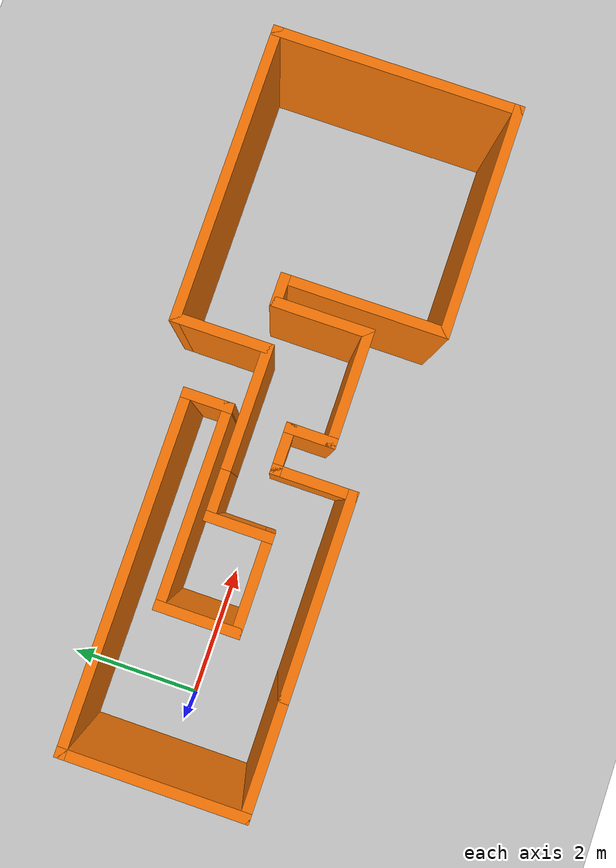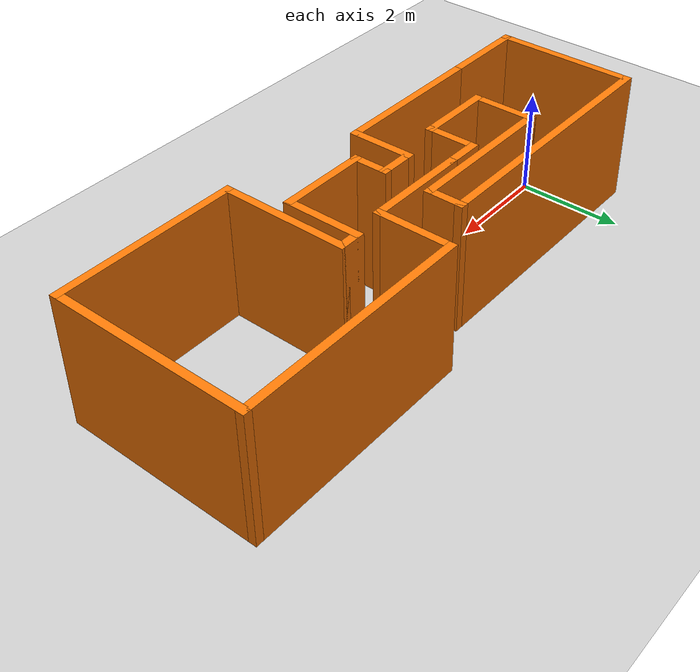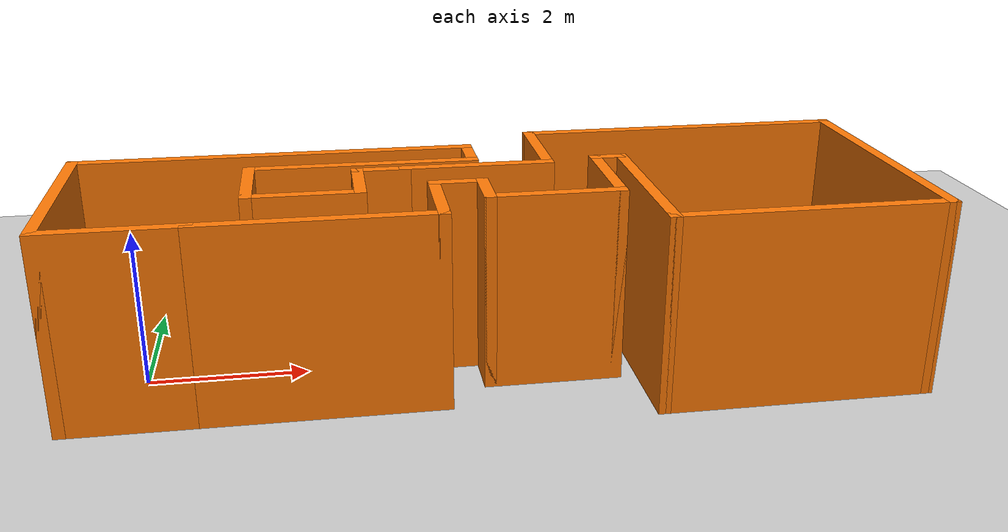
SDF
<sdf version="1.7">
 <world name="default">
  <light name="sun" type="directional">
   <pose>0 0 10 0 -0 0</pose>
   <diffuse>0.8 0.8 0.8 1</diffuse>
   <specular>0.2 0.2 0.2 1</specular>
   <attenuation>
    <range>1000</range>
    <constant>0.9</constant>
    <linear>0.01</linear>
    <quadratic>0.001</quadratic>
   </attenuation>
   <direction>-0.5 0.1 -0.9</direction>
   <spot><inner_angle>0</inner_angle><outer_angle>0</outer_angle><falloff>0</falloff></spot>
  </light>
  <model name="ground_plane">
   <static>1</static>
   <link name="link">
    <collision name="collision">
     <geometry><plane><normal>0 0 1</normal><size>100 100</size></plane></geometry>
     <surface>
      <contact><collide_bitmask>65535</collide_bitmask></contact>
      <friction><ode><mu>100</mu><mu2>50</mu2></ode></friction>
     </surface>
    </collision>
    <visual name="visual">
     <cast_shadows>0</cast_shadows>
     <geometry><plane><normal>0 0 1</normal><size>100 100</size></plane></geometry>
     <material>
      <script><uri>file://media/materials/scripts/gazebo.material</uri><name>Gazebo/Grey</name></script>
     </material>
    </visual>
   </link>
  </model>
  <gravity>0 0 -9.8</gravity>
  <magnetic_field>6e-06 2.3e-05 -4.2e-05</magnetic_field>
  <atmosphere type="adiabatic"/>
  <physics type="ode">
   <max_step_size>0.001</max_step_size>
   <real_time_factor>1</real_time_factor>
   <real_time_update_rate>1000</real_time_update_rate>
  </physics>
  <scene><ambient>0.4 0.4 0.4 1</ambient><background>0.7 0.7 0.7 1</background><shadows>1</shadows></scene>
  <spherical_coordinates>
   <surface_model>EARTH_WGS84</surface_model>
   <latitude_deg>0</latitude_deg>
   <longitude_deg>0</longitude_deg>
   <elevation>0</elevation>
   <heading_deg>0</heading_deg>
  </spherical_coordinates>
  <model name="myworld">
   <pose>4.34746 0.307578 0 0 -0 0</pose>
   <link name="Wall_0">
    <collision name="Wall_0_Collision">
     <geometry><box><size>3 0.15 2.5</size></box></geometry>
     <pose>0 0 1.25 0 -0 0</pose>
    </collision>
    <visual name="Wall_0_Visual">
     <pose>0 0 1.25 0 -0 0</pose>
     <geometry><box><size>3 0.15 2.5</size></box></geometry>
     <material>
      <script><uri>file://media/materials/scripts/gazebo.material</uri><name>Gazebo/Grey</name></script>
      <ambient>0.996078 0.47451 0.0196078 1</ambient>
     </material>
     <meta><layer>0</layer></meta>
    </visual>
    <pose>-2.125 -1.5075 0 0 -0 0</pose>
   </link>
   <link name="Wall_1">
    <collision name="Wall_1_Collision">
     <geometry><box><size>1.25 0.15 2.5</size></box></geometry>
     <pose>0 0 1.25 0 -0 0</pose>
    </collision>
    <visual name="Wall_1_Visual">
     <pose>0 0 1.25 0 -0 0</pose>
     <geometry><box><size>1.25 0.15 2.5</size></box></geometry>
     <material>
      <script><uri>file://media/materials/scripts/gazebo.material</uri><name>Gazebo/Grey</name></script>
      <ambient>0.996078 0.47451 0.0196078 1</ambient>
     </material>
     <meta><layer>0</layer></meta>
    </visual>
    <pose>-0.7 -0.9575 0 0 -0 1.5708</pose>
   </link>
   <link name="Wall_10">
    <collision name="Wall_10_Collision">
     <geometry><box><size>4.5 0.15 2.5</size></box></geometry>
     <pose>0 0 1.25 0 -0 0</pose>
    </collision>
    <visual name="Wall_10_Visual">
     <pose>0 0 1.25 0 -0 0</pose>
     <geometry><box><size>4.5 0.15 2.5</size></box></geometry>
     <material>
      <script><uri>file://media/materials/scripts/gazebo.material</uri><name>Gazebo/Grey</name></script>
      <ambient>0.996078 0.47451 0.0196078 1</ambient>
     </material>
     <meta><layer>0</layer></meta>
    </visual>
    <pose>3.025 1.5925 0 0 -0 3.14159</pose>
   </link>
   <link name="Wall_11">
    <collision name="Wall_11_Collision">
     <geometry><box><size>1.5 0.15 2.5</size></box></geometry>
     <pose>0 0 1.25 0 -0 0</pose>
    </collision>
    <visual name="Wall_11_Visual">
     <pose>0 0 1.25 0 -0 0</pose>
     <geometry><box><size>1.5 0.15 2.5</size></box></geometry>
     <material>
      <script><uri>file://media/materials/scripts/gazebo.material</uri><name>Gazebo/Grey</name></script>
      <ambient>0.996078 0.47451 0.0196078 1</ambient>
     </material>
     <meta><layer>0</layer></meta>
    </visual>
    <pose>0.85 0.9175 0 0 -0 -1.5708</pose>
   </link>
   <link name="Wall_12">
    <collision name="Wall_12_Collision">
     <geometry><box><size>2 0.15 2.5</size></box></geometry>
     <pose>0 0 1.25 0 -0 0</pose>
    </collision>
    <visual name="Wall_12_Visual">
     <pose>0 0 1.25 0 -0 0</pose>
     <geometry><box><size>2 0.15 2.5</size></box></geometry>
     <material>
      <script><uri>file://media/materials/scripts/gazebo.material</uri><name>Gazebo/Grey</name></script>
      <ambient>0.996078 0.47451 0.0196078 1</ambient>
     </material>
     <meta><layer>0</layer></meta>
    </visual>
    <pose>-0.075 0.2425 0 0 -0 3.14159</pose>
   </link>
   <link name="Wall_13">
    <collision name="Wall_13_Collision">
     <geometry><box><size>0.75 0.15 2.5</size></box></geometry>
     <pose>0 0 1.25 0 -0 0</pose>
    </collision>
    <visual name="Wall_13_Visual">
     <pose>0 0 1.25 0 -0 0</pose>
     <geometry><box><size>0.75 0.15 2.5</size></box></geometry>
     <material>
      <script><uri>file://media/materials/scripts/gazebo.material</uri><name>Gazebo/Grey</name></script>
      <ambient>0.996078 0.47451 0.0196078 1</ambient>
     </material>
     <meta><layer>0</layer></meta>
    </visual>
    <pose>-1.3 0.2425 0 0 -0 3.14159</pose>
   </link>
   <link name="Wall_14">
    <collision name="Wall_14_Collision">
     <geometry><box><size>1 0.15 2.5</size></box></geometry>
     <pose>0 0 1.25 0 -0 0</pose>
    </collision>
    <visual name="Wall_14_Visual">
     <pose>0 0 1.25 0 -0 0</pose>
     <geometry><box><size>1 0.15 2.5</size></box></geometry>
     <material>
      <script><uri>file://media/materials/scripts/gazebo.material</uri><name>Gazebo/Grey</name></script>
      <ambient>0.996078 0.47451 0.0196078 1</ambient>
     </material>
     <meta><layer>0</layer></meta>
    </visual>
    <pose>-1.6 -0.1825 0 0 -0 -1.5708</pose>
   </link>
   <link name="Wall_15">
    <collision name="Wall_15_Collision">
     <geometry><box><size>1.5 0.15 2.5</size></box></geometry>
     <pose>0 0 1.25 0 -0 0</pose>
    </collision>
    <visual name="Wall_15_Visual">
     <pose>0 0 1.25 0 -0 0</pose>
     <geometry><box><size>1.5 0.15 2.5</size></box></geometry>
     <material>
      <script><uri>file://media/materials/scripts/gazebo.material</uri><name>Gazebo/Grey</name></script>
      <ambient>0.996078 0.47451 0.0196078 1</ambient>
     </material>
     <meta><layer>0</layer></meta>
    </visual>
    <pose>-2.275 -0.6075 0 0 -0 3.14159</pose>
   </link>
   <link name="Wall_16">
    <collision name="Wall_16_Collision">
     <geometry><box><size>1.25 0.15 2.5</size></box></geometry>
     <pose>0 0 1.25 0 -0 0</pose>
    </collision>
    <visual name="Wall_16_Visual">
     <pose>0 0 1.25 0 -0 0</pose>
     <geometry><box><size>1.25 0.15 2.5</size></box></geometry>
     <material>
      <script><uri>file://media/materials/scripts/gazebo.material</uri><name>Gazebo/Grey</name></script>
      <ambient>0.996078 0.47451 0.0196078 1</ambient>
     </material>
     <meta><layer>0</layer></meta>
    </visual>
    <pose>-2.95 -0.0575 0 0 -0 1.5708</pose>
   </link>
   <link name="Wall_17">
    <collision name="Wall_17_Collision">
     <geometry><box><size>3 0.15 2.5</size></box></geometry>
     <pose>0 0 1.25 0 -0 0</pose>
    </collision>
    <visual name="Wall_17_Visual">
     <pose>0 0 1.25 0 -0 0</pose>
     <geometry><box><size>3 0.15 2.5</size></box></geometry>
     <material>
      <script><uri>file://media/materials/scripts/gazebo.material</uri><name>Gazebo/Grey</name></script>
      <ambient>0.996078 0.47451 0.0196078 1</ambient>
     </material>
     <meta><layer>0</layer></meta>
    </visual>
    <pose>-1.525 0.4925 0 0 -0 0</pose>
   </link>
   <link name="Wall_18">
    <collision name="Wall_18_Collision">
     <geometry><box><size>0.75 0.15 2.5</size></box></geometry>
     <pose>0 0 1.25 0 -0 0</pose>
    </collision>
    <visual name="Wall_18_Visual">
     <pose>0 0 1.25 0 -0 0</pose>
     <geometry><box><size>0.75 0.15 2.5</size></box></geometry>
     <material>
      <script><uri>file://media/materials/scripts/gazebo.material</uri><name>Gazebo/Grey</name></script>
      <ambient>0.996078 0.47451 0.0196078 1</ambient>
     </material>
     <meta><layer>0</layer></meta>
    </visual>
    <pose>-0.1 0.7925 0 0 -0 1.5708</pose>
   </link>
   <link name="Wall_19">
    <collision name="Wall_19_Collision">
     <geometry><box><size>5.25 0.15 2.5</size></box></geometry>
     <pose>0 0 1.25 0 -0 0</pose>
    </collision>
    <visual name="Wall_19_Visual">
     <pose>0 0 1.25 0 -0 0</pose>
     <geometry><box><size>5.25 0.15 2.5</size></box></geometry>
     <material>
      <script><uri>file://media/materials/scripts/gazebo.material</uri><name>Gazebo/Grey</name></script>
      <ambient>0.996078 0.47451 0.0196078 1</ambient>
     </material>
     <meta><layer>0</layer></meta>
    </visual>
    <pose>-2.65 1.0925 0 0 -0 3.14159</pose>
   </link>
   <link name="Wall_2">
    <collision name="Wall_2_Collision">
     <geometry><box><size>0.75 0.15 2.5</size></box></geometry>
     <pose>0 0 1.25 0 -0 0</pose>
    </collision>
    <visual name="Wall_2_Visual">
     <pose>0 0 1.25 0 -0 0</pose>
     <geometry><box><size>0.75 0.15 2.5</size></box></geometry>
     <material>
      <script><uri>file://media/materials/scripts/gazebo.material</uri><name>Gazebo/Grey</name></script>
      <ambient>0.996078 0.47451 0.0196078 1</ambient>
     </material>
     <meta><layer>0</layer></meta>
    </visual>
    <pose>-0.4 -0.4075 0 0 -0 0</pose>
   </link>
   <link name="Wall_20">
    <collision name="Wall_20_Collision">
     <geometry><box><size>2.75 0.15 2.5</size></box></geometry>
     <pose>0 0 1.25 0 -0 0</pose>
    </collision>
    <visual name="Wall_20_Visual">
     <pose>0 0 1.25 0 -0 0</pose>
     <geometry><box><size>2.75 0.15 2.5</size></box></geometry>
     <material>
      <script><uri>file://media/materials/scripts/gazebo.material</uri><name>Gazebo/Grey</name></script>
      <ambient>0.996078 0.47451 0.0196078 1</ambient>
     </material>
     <meta><layer>0</layer></meta>
    </visual>
    <pose>-5.2 -0.2075 0 0 -0 -1.5708</pose>
   </link>
   <link name="Wall_21">
    <collision name="Wall_21_Collision">
     <geometry><box><size>1.8 0.15 2.5</size></box></geometry>
     <pose>0 0 1.25 0 -0 0</pose>
    </collision>
    <visual name="Wall_21_Visual">
     <pose>0 0 1.25 0 -0 0</pose>
     <geometry><box><size>1.8 0.15 2.5</size></box></geometry>
     <material>
      <script><uri>file://media/materials/scripts/gazebo.material</uri><name>Gazebo/Grey</name></script>
      <ambient>0.996078 0.47451 0.0196078 1</ambient>
     </material>
     <meta><layer>0</layer></meta>
    </visual>
    <pose>-4.375 -1.5075 0 0 -0 0</pose>
   </link>
   <link name="Wall_3">
    <collision name="Wall_3_Collision">
     <geometry><box><size>0.75 0.15 2.5</size></box></geometry>
     <pose>0 0 1.25 0 -0 0</pose>
    </collision>
    <visual name="Wall_3_Visual">
     <pose>0 0 1.25 0 -0 0</pose>
     <geometry><box><size>0.75 0.15 2.5</size></box></geometry>
     <material>
      <script><uri>file://media/materials/scripts/gazebo.material</uri><name>Gazebo/Grey</name></script>
      <ambient>0.996078 0.47451 0.0196078 1</ambient>
     </material>
     <meta><layer>0</layer></meta>
    </visual>
    <pose>-0.1 -0.7075 0 0 -0 -1.5708</pose>
   </link>
   <link name="Wall_4">
    <collision name="Wall_4_Collision">
     <geometry><box><size>1.75 0.15 2.5</size></box></geometry>
     <pose>0 0 1.25 0 -0 0</pose>
    </collision>
    <visual name="Wall_4_Visual">
     <pose>0 0 1.25 0 -0 0</pose>
     <geometry><box><size>1.75 0.15 2.5</size></box></geometry>
     <material>
      <script><uri>file://media/materials/scripts/gazebo.material</uri><name>Gazebo/Grey</name></script>
      <ambient>0.996078 0.47451 0.0196078 1</ambient>
     </material>
     <meta><layer>0</layer></meta>
    </visual>
    <pose>0.7 -1.0075 0 0 -0 0</pose>
   </link>
   <link name="Wall_5">
    <collision name="Wall_5_Collision">
     <geometry><box><size>1.5 0.15 2.5</size></box></geometry>
     <pose>0 0 1.25 0 -0 0</pose>
    </collision>
    <visual name="Wall_5_Visual">
     <pose>0 0 1.25 0 -0 0</pose>
     <geometry><box><size>1.5 0.15 2.5</size></box></geometry>
     <material>
      <script><uri>file://media/materials/scripts/gazebo.material</uri><name>Gazebo/Grey</name></script>
      <ambient>0.996078 0.47451 0.0196078 1</ambient>
     </material>
     <meta><layer>0</layer></meta>
    </visual>
    <pose>1.5 -0.3325 0 0 -0 1.5708</pose>
   </link>
   <link name="Wall_6">
    <collision name="Wall_6_Collision">
     <geometry><box><size>0.5 0.15 2.5</size></box></geometry>
     <pose>0 0 1.25 0 -0 0</pose>
    </collision>
    <visual name="Wall_6_Visual">
     <pose>0 0 1.25 0 -0 0</pose>
     <geometry><box><size>0.5 0.15 2.5</size></box></geometry>
     <material>
      <script><uri>file://media/materials/scripts/gazebo.material</uri><name>Gazebo/Grey</name></script>
      <ambient>0.996078 0.47451 0.0196078 1</ambient>
     </material>
     <meta><layer>0</layer></meta>
    </visual>
    <pose>1.675 0.3425 0 0 -0 0</pose>
   </link>
   <link name="Wall_7">
    <collision name="Wall_7_Collision">
     <geometry><box><size>2.5 0.15 2.5</size></box></geometry>
     <pose>0 0 1.25 0 -0 0</pose>
    </collision>
    <visual name="Wall_7_Visual">
     <pose>0 0 1.25 0 -0 0</pose>
     <geometry><box><size>2.5 0.15 2.5</size></box></geometry>
     <material>
      <script><uri>file://media/materials/scripts/gazebo.material</uri><name>Gazebo/Grey</name></script>
      <ambient>0.996078 0.47451 0.0196078 1</ambient>
     </material>
     <meta><layer>0</layer></meta>
    </visual>
    <pose>1.85 -0.8325 0 0 -0 -1.5708</pose>
   </link>
   <link name="Wall_8">
    <collision name="Wall_8_Collision">
     <geometry><box><size>3.5 0.15 2.5</size></box></geometry>
     <pose>0 0 1.25 0 -0 0</pose>
    </collision>
    <visual name="Wall_8_Visual">
     <pose>0 0 1.25 0 -0 0</pose>
     <geometry><box><size>3.5 0.15 2.5</size></box></geometry>
     <material>
      <script><uri>file://media/materials/scripts/gazebo.material</uri><name>Gazebo/Grey</name></script>
      <ambient>0.996078 0.47451 0.0196078 1</ambient>
     </material>
     <meta><layer>0</layer></meta>
    </visual>
    <pose>3.525 -2.0075 0 0 -0 0</pose>
   </link>
   <link name="Wall_9">
    <collision name="Wall_9_Collision">
     <geometry><box><size>3.75 0.15 2.5</size></box></geometry>
     <pose>0 0 1.25 0 -0 0</pose>
    </collision>
    <visual name="Wall_9_Visual">
     <pose>0 0 1.25 0 -0 0</pose>
     <geometry><box><size>3.75 0.15 2.5</size></box></geometry>
     <material>
      <script><uri>file://media/materials/scripts/gazebo.material</uri><name>Gazebo/Grey</name></script>
      <ambient>0.996078 0.47451 0.0196078 1</ambient>
     </material>
     <meta><layer>0</layer></meta>
    </visual>
    <pose>5.2 -0.2075 0 0 -0 1.5708</pose>
   </link>
   <static>1</static>
  </model>
 </world>
</sdf>
